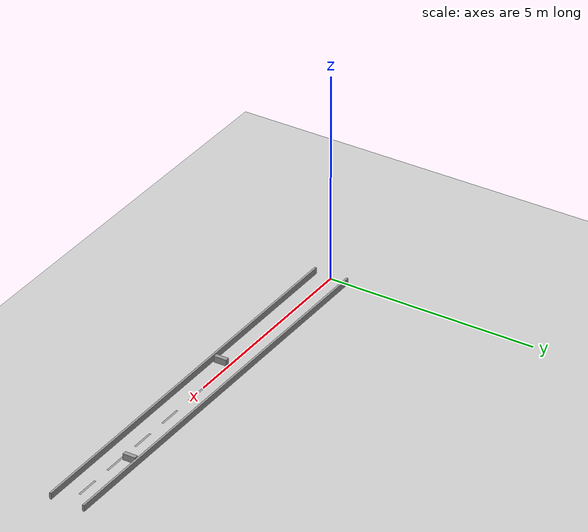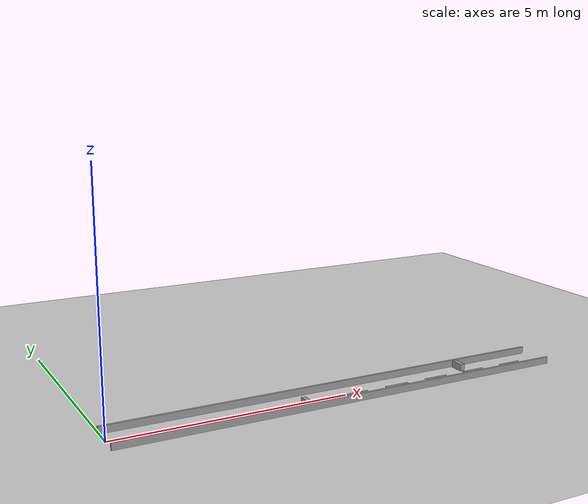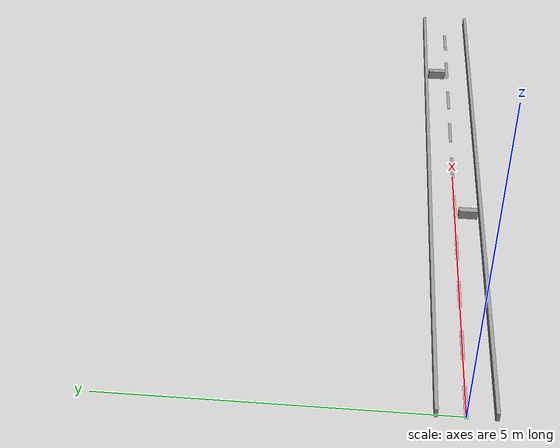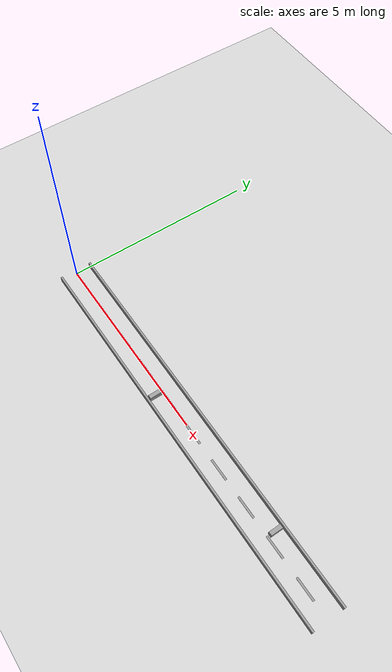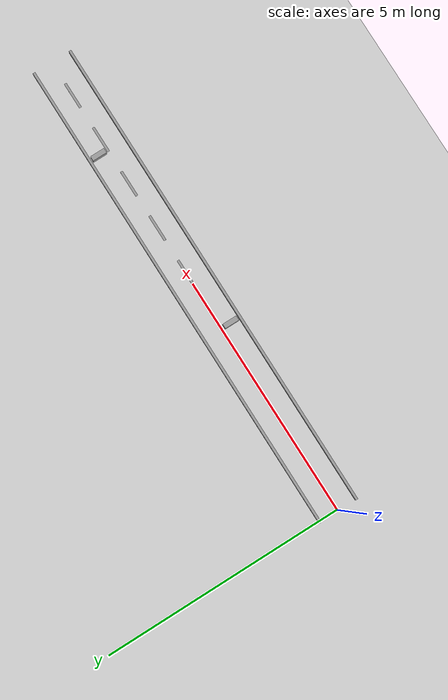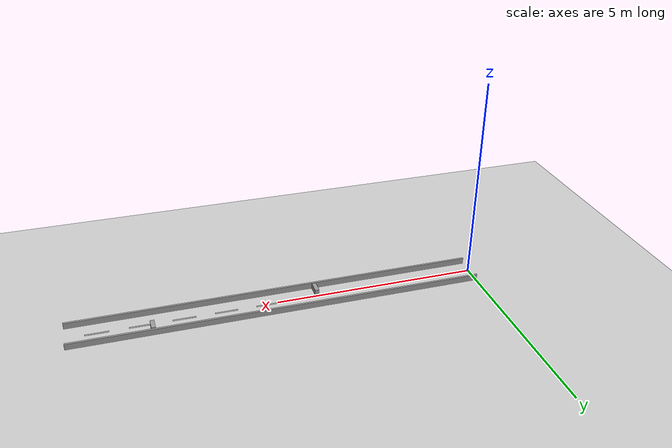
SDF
<sdf version="1.7">
 <world name="default">
  <light name="sun" type="directional">
   <pose>0 0 10 0 -0 0</pose>
   <diffuse>0.8 0.8 0.8 1</diffuse>
   <specular>0.2 0.2 0.2 1</specular>
   <attenuation>
    <range>1000</range>
    <constant>0.9</constant>
    <linear>0.01</linear>
    <quadratic>0.001</quadratic>
   </attenuation>
   <direction>-0.5 0.1 -0.9</direction>
   <spot><inner_angle>0</inner_angle><outer_angle>0</outer_angle><falloff>0</falloff></spot>
  </light>
  <model name="ground_plane">
   <pose>4 0 0 0 -0 0</pose>
   <static>1</static>
   <link name="link">
    <collision name="collision">
     <geometry><plane><normal>0 0 1</normal><size>100 100</size></plane></geometry>
     <surface>
      <contact><collide_bitmask>65535</collide_bitmask></contact>
      <friction><ode><mu>100</mu><mu2>50</mu2></ode></friction>
     </surface>
    </collision>
    <visual name="visual">
     <cast_shadows>0</cast_shadows>
     <geometry><plane><normal>0 0 1</normal><size>100 100</size></plane></geometry>
     <material>
      <script><uri>file://media/materials/scripts/gazebo.material</uri><name>Gazebo/Grey</name></script>
     </material>
    </visual>
   </link>
  </model>
  <gravity>0 0 -9.8</gravity>
  <magnetic_field>6e-06 2.3e-05 -4.2e-05</magnetic_field>
  <atmosphere type="adiabatic"/>
  <physics type="ode">
   <max_step_size>0.001</max_step_size>
   <real_time_factor>1</real_time_factor>
   <real_time_update_rate>1000</real_time_update_rate>
  </physics>
  <scene><ambient>0.4 0.4 0.4 1</ambient><background>0.7 0.7 0.7 1</background><shadows>1</shadows></scene>
  <spherical_coordinates>
   <surface_model>EARTH_WGS84</surface_model>
   <latitude_deg>0</latitude_deg>
   <longitude_deg>0</longitude_deg>
   <elevation>0</elevation>
   <heading_deg>0</heading_deg>
  </spherical_coordinates>
  <model name="two_lanes">
   <pose>4.975 0 0 0 -0 0</pose>
   <link name="Wall_0">
    <collision name="Wall_0_Collision">
     <geometry><box><size>10 0.05 0.15</size></box></geometry>
     <pose>0 0 0.075 0 -0 0</pose>
    </collision>
    <visual name="Wall_0_Visual">
     <pose>0 0 0.075 0 -0 0</pose>
     <geometry><box><size>10 0.05 0.15</size></box></geometry>
     <material>
      <script><uri>file://media/materials/scripts/gazebo.material</uri><name>Gazebo/Grey</name></script>
      <ambient>1 1 1 1</ambient>
     </material>
     <meta><layer>0</layer></meta>
    </visual>
    <pose>-0 -0.4 0 0 -0 0</pose>
   </link>
   <link name="Wall_12">
    <collision name="Wall_12_Collision">
     <geometry><box><size>0.55 0.05 0.001</size></box></geometry>
     <pose>0 0 0.0005 0 -0 0</pose>
    </collision>
    <visual name="Wall_12_Visual">
     <pose>0 0 0.0005 0 -0 0</pose>
     <geometry><box><size>0.55 0.05 0.001</size></box></geometry>
     <material>
      <script><uri>file://media/materials/scripts/gazebo.material</uri><name>Gazebo/Grey</name></script>
      <ambient>1 1 1 1</ambient>
     </material>
     <meta><layer>0</layer></meta>
    </visual>
    <pose>-1.725 0 0 0 -0 0</pose>
   </link>
   <link name="Wall_14">
    <collision name="Wall_14_Collision">
     <geometry><box><size>0.55 0.05 0.001</size></box></geometry>
     <pose>0 0 0.0005 0 -0 0</pose>
    </collision>
    <visual name="Wall_14_Visual">
     <pose>0 0 0.0005 0 -0 0</pose>
     <geometry><box><size>0.55 0.05 0.001</size></box></geometry>
     <material>
      <script><uri>file://media/materials/scripts/gazebo.material</uri><name>Gazebo/Grey</name></script>
      <ambient>1 1 1 1</ambient>
     </material>
     <meta><layer>0</layer></meta>
    </visual>
    <pose>-0.725 0 0 0 -0 0</pose>
   </link>
   <link name="Wall_16">
    <collision name="Wall_16_Collision">
     <geometry><box><size>0.55 0.05 0.001</size></box></geometry>
     <pose>0 0 0.0005 0 -0 0</pose>
    </collision>
    <visual name="Wall_16_Visual">
     <pose>0 0 0.0005 0 -0 0</pose>
     <geometry><box><size>0.55 0.05 0.001</size></box></geometry>
     <material>
      <script><uri>file://media/materials/scripts/gazebo.material</uri><name>Gazebo/Grey</name></script>
      <ambient>1 1 1 1</ambient>
     </material>
     <meta><layer>0</layer></meta>
    </visual>
    <pose>0.275 0 0 0 -0 0</pose>
   </link>
   <link name="Wall_18">
    <collision name="Wall_18_Collision">
     <geometry><box><size>0.55 0.05 0.001</size></box></geometry>
     <pose>0 0 0.0005 0 -0 0</pose>
    </collision>
    <visual name="Wall_18_Visual">
     <pose>0 0 0.0005 0 -0 0</pose>
     <geometry><box><size>0.55 0.05 0.001</size></box></geometry>
     <material>
      <script><uri>file://media/materials/scripts/gazebo.material</uri><name>Gazebo/Grey</name></script>
      <ambient>1 1 1 1</ambient>
     </material>
     <meta><layer>0</layer></meta>
    </visual>
    <pose>1.275 0 0 0 -0 0</pose>
   </link>
   <link name="Wall_2">
    <collision name="Wall_2_Collision">
     <geometry><box><size>10 0.05 0.15</size></box></geometry>
     <pose>0 0 0.075 0 -0 0</pose>
    </collision>
    <visual name="Wall_2_Visual">
     <pose>0 0 0.075 0 -0 0</pose>
     <geometry><box><size>10 0.05 0.15</size></box></geometry>
     <material>
      <script><uri>file://media/materials/scripts/gazebo.material</uri><name>Gazebo/Grey</name></script>
      <ambient>1 1 1 1</ambient>
     </material>
     <meta><layer>0</layer></meta>
    </visual>
    <pose>-0 0.4 0 0 -0 0</pose>
   </link>
   <link name="Wall_20">
    <collision name="Wall_20_Collision">
     <geometry><box><size>0.55 0.05 0.001</size></box></geometry>
     <pose>0 0 0.0005 0 -0 0</pose>
    </collision>
    <visual name="Wall_20_Visual">
     <pose>0 0 0.0005 0 -0 0</pose>
     <geometry><box><size>0.55 0.05 0.001</size></box></geometry>
     <material>
      <script><uri>file://media/materials/scripts/gazebo.material</uri><name>Gazebo/Grey</name></script>
      <ambient>1 1 1 1</ambient>
     </material>
     <meta><layer>0</layer></meta>
    </visual>
    <pose>2.275 0 0 0 -0 0</pose>
   </link>
   <link name="Wall_22">
    <collision name="Wall_22_Collision">
     <geometry><box><size>0.55 0.05 0.001</size></box></geometry>
     <pose>0 0 0.0005 0 -0 0</pose>
    </collision>
    <visual name="Wall_22_Visual">
     <pose>0 0 0.0005 0 -0 0</pose>
     <geometry><box><size>0.55 0.05 0.001</size></box></geometry>
     <material>
      <script><uri>file://media/materials/scripts/gazebo.material</uri><name>Gazebo/Grey</name></script>
      <ambient>1 1 1 1</ambient>
     </material>
     <meta><layer>0</layer></meta>
    </visual>
    <pose>3.275 0 0 0 -0 0</pose>
   </link>
   <link name="Wall_24">
    <collision name="Wall_24_Collision">
     <geometry><box><size>0.55 0.05 0.001</size></box></geometry>
     <pose>0 0 0.0005 0 -0 0</pose>
    </collision>
    <visual name="Wall_24_Visual">
     <pose>0 0 0.0005 0 -0 0</pose>
     <geometry><box><size>0.55 0.05 0.001</size></box></geometry>
     <material>
      <script><uri>file://media/materials/scripts/gazebo.material</uri><name>Gazebo/Grey</name></script>
      <ambient>1 1 1 1</ambient>
     </material>
     <meta><layer>0</layer></meta>
    </visual>
    <pose>4.275 0 0 0 -0 0</pose>
   </link>
   <link name="Wall_4">
    <collision name="Wall_4_Collision">
     <geometry><box><size>0.55 0.05 0.001</size></box></geometry>
     <pose>0 0 0.0005 0 -0 0</pose>
    </collision>
    <visual name="Wall_4_Visual">
     <pose>0 0 0.0005 0 -0 0</pose>
     <geometry><box><size>0.55 0.05 0.001</size></box></geometry>
     <material>
      <script><uri>file://media/materials/scripts/gazebo.material</uri><name>Gazebo/Grey</name></script>
      <ambient>1 1 1 1</ambient>
     </material>
     <meta><layer>0</layer></meta>
    </visual>
    <pose>-4.725 0 0 0 -0 0</pose>
   </link>
   <link name="Wall_6">
    <collision name="Wall_6_Collision">
     <geometry><box><size>0.55 0.05 0.001</size></box></geometry>
     <pose>0 0 0.0005 0 -0 0</pose>
    </collision>
    <visual name="Wall_6_Visual">
     <pose>0 0 0.0005 0 -0 0</pose>
     <geometry><box><size>0.55 0.05 0.001</size></box></geometry>
     <material>
      <script><uri>file://media/materials/scripts/gazebo.material</uri><name>Gazebo/Grey</name></script>
      <ambient>1 1 1 1</ambient>
     </material>
     <meta><layer>0</layer></meta>
    </visual>
    <pose>-3.725 0 0 0 -0 0</pose>
   </link>
   <link name="Wall_8">
    <collision name="Wall_8_Collision">
     <geometry><box><size>0.55 0.05 0.001</size></box></geometry>
     <pose>0 0 0.0005 0 -0 0</pose>
    </collision>
    <visual name="Wall_8_Visual">
     <pose>0 0 0.0005 0 -0 0</pose>
     <geometry><box><size>0.55 0.05 0.001</size></box></geometry>
     <material>
      <script><uri>file://media/materials/scripts/gazebo.material</uri><name>Gazebo/Grey</name></script>
      <ambient>1 1 1 1</ambient>
     </material>
     <meta><layer>0</layer></meta>
    </visual>
    <pose>-2.725 0 0 0 -0 0</pose>
   </link>
   <static>1</static>
  </model>
  <model name="Obstacle">
   <link name="link_4">
    <inertial>
     <mass>1</mass>
     <inertia>
      <ixx>0.166667</ixx>
      <ixy>0</ixy>
      <ixz>0</ixz>
      <iyy>0.166667</iyy>
      <iyz>0</iyz>
      <izz>0.166667</izz>
     </inertia>
    </inertial>
    <visual name="visual">
     <geometry><box><size>0.1 0.3 0.15</size></box></geometry>
     <material>
      <lighting>1</lighting>
      <script><uri>file://media/materials/scripts/gazebo.material</uri><name>Gazebo/Grey</name></script>
      <shader type="pixel"><normal_map>__default__</normal_map></shader>
      <ambient>1 1 1 1</ambient>
      <diffuse>1 1 1 1</diffuse>
      <specular>0.01 0.01 0.01 1</specular>
      <emissive>0 0 0 1</emissive>
     </material>
    </visual>
    <collision name="collision">
     <geometry><box><size>0.1 0.3 0.15</size></box></geometry>
     <surface>
      <friction>
       <ode><mu>1</mu><mu2>1</mu2><fdir1>0 0 0</fdir1><slip1>0</slip1><slip2>0</slip2></ode>
       <torsional>
        <coefficient>1</coefficient>
        <patch_radius>0</patch_radius>
        <surface_radius>0</surface_radius>
        <use_patch_radius>1</use_patch_radius>
        <ode><slip>0</slip></ode>
       </torsional>
      </friction>
      <bounce><restitution_coefficient>0</restitution_coefficient><threshold>1e+06</threshold></bounce>
      <contact>
       <collide_without_contact>0</collide_without_contact>
       <collide_without_contact_bitmask>1</collide_without_contact_bitmask>
       <collide_bitmask>1</collide_bitmask>
       <ode>
        <soft_cfm>0</soft_cfm>
        <soft_erp>0.2</soft_erp>
        <kp>1e+13</kp>
        <kd>1</kd>
        <max_vel>0.01</max_vel>
        <min_depth>0</min_depth>
       </ode>
       <bullet>
        <split_impulse>1</split_impulse>
        <split_impulse_penetration_threshold>-0.01</split_impulse_penetration_threshold>
        <soft_cfm>0</soft_cfm>
        <soft_erp>0.2</soft_erp>
        <kp>1e+13</kp>
        <kd>1</kd>
       </bullet>
      </contact>
     </surface>
    </collision>
   </link>
   <static>0</static>
   <pose>4 -0.2 0.075 0 -0 0</pose>
  </model>
  <model name="Obstacle_clone">
   <link name="link_4">
    <inertial>
     <mass>1</mass>
     <inertia>
      <ixx>0.166667</ixx>
      <ixy>0</ixy>
      <ixz>0</ixz>
      <iyy>0.166667</iyy>
      <iyz>0</iyz>
      <izz>0.166667</izz>
     </inertia>
    </inertial>
    <visual name="visual">
     <geometry><box><size>0.1 0.3 0.15</size></box></geometry>
     <material>
      <lighting>1</lighting>
      <script><uri>file://media/materials/scripts/gazebo.material</uri><name>Gazebo/Grey</name></script>
      <shader type="pixel"><normal_map>__default__</normal_map></shader>
      <ambient>1 1 1 1</ambient>
      <diffuse>1 1 1 1</diffuse>
      <specular>0.01 0.01 0.01 1</specular>
      <emissive>0 0 0 1</emissive>
     </material>
    </visual>
    <collision name="collision">
     <geometry><box><size>0.1 0.3 0.15</size></box></geometry>
     <surface>
      <friction>
       <ode><mu>1</mu><mu2>1</mu2><fdir1>0 0 0</fdir1><slip1>0</slip1><slip2>0</slip2></ode>
       <torsional>
        <coefficient>1</coefficient>
        <patch_radius>0</patch_radius>
        <surface_radius>0</surface_radius>
        <use_patch_radius>1</use_patch_radius>
        <ode><slip>0</slip></ode>
       </torsional>
      </friction>
      <bounce><restitution_coefficient>0</restitution_coefficient><threshold>1e+06</threshold></bounce>
      <contact>
       <collide_without_contact>0</collide_without_contact>
       <collide_without_contact_bitmask>1</collide_without_contact_bitmask>
       <collide_bitmask>1</collide_bitmask>
       <ode>
        <soft_cfm>0</soft_cfm>
        <soft_erp>0.2</soft_erp>
        <kp>1e+13</kp>
        <kd>1</kd>
        <max_vel>0.01</max_vel>
        <min_depth>0</min_depth>
       </ode>
       <bullet>
        <split_impulse>1</split_impulse>
        <split_impulse_penetration_threshold>-0.01</split_impulse_penetration_threshold>
        <soft_cfm>0</soft_cfm>
        <soft_erp>0.2</soft_erp>
        <kp>1e+13</kp>
        <kd>1</kd>
       </bullet>
      </contact>
     </surface>
    </collision>
   </link>
   <static>0</static>
   <pose>8 0.2 0.075 0 -0 0</pose>
  </model>
 </world>
</sdf>
